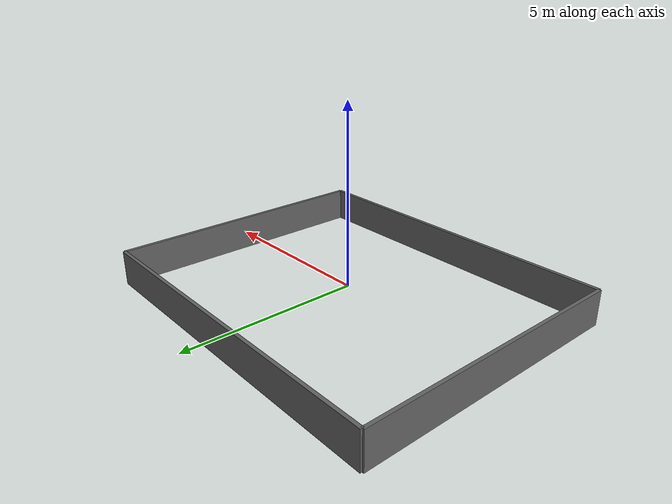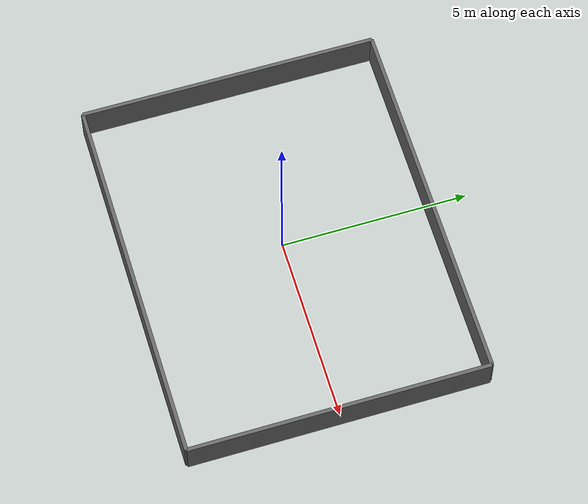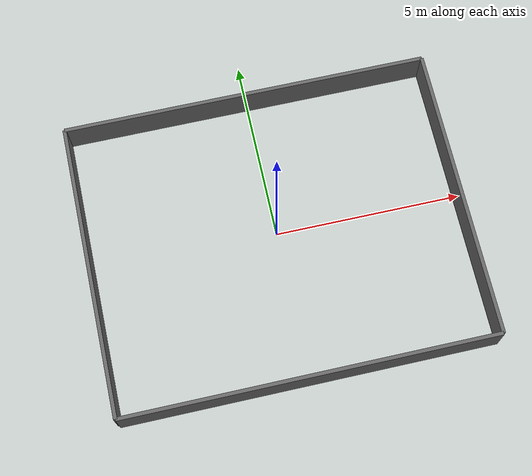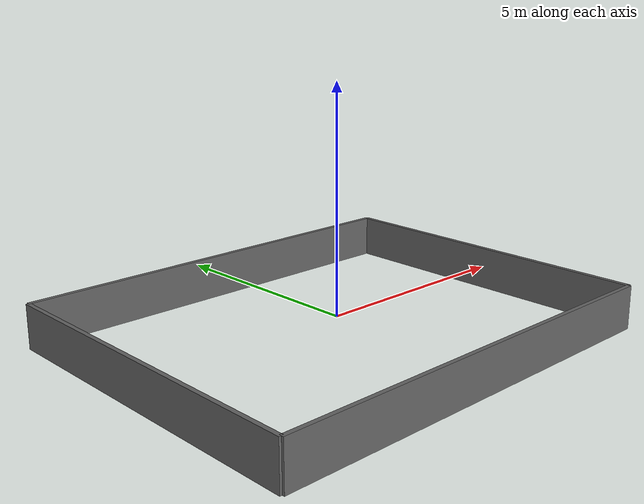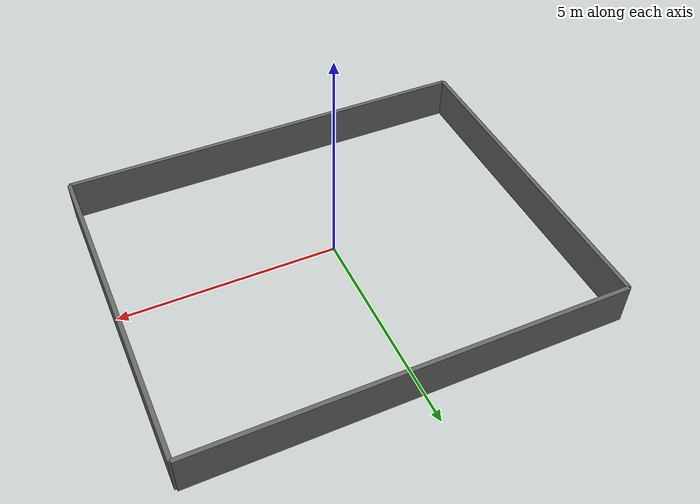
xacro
<?xml version="1.0"?>

<!--
 Preview:
     _______1________
    |                |
    |                |
    |       0        |
   3|       .        |4
    |                |
    |________________|
            2
-->

<robot xmlns:xacro="http://www.ros.org/wiki/xacro" name="hall">

    <xacro:include filename="$(find ropod_sim)/world_description/wall.xacro" />

    <link name="wall_0"/>

    <xacro:wall name="wall_1" parent="wall_0" length="10.0">
        <origin xyz="0.0 4.0 0.0" rpy="0.0 0.0 0.0"/>
    </xacro:wall>

    <xacro:wall name="wall_2" parent="wall_0" length="10.0">
        <origin xyz="0.0 -4.0 0.0" rpy="0.0 0.0 0.0"/>
    </xacro:wall>

    <xacro:wall name="wall_3" parent="wall_0" length="8.0">
        <origin xyz="-5.0 0.0 0.0" rpy="0.0 0.0 ${pi/2}"/>
    </xacro:wall>

    <xacro:wall name="wall_4" parent="wall_0" length="8.0">
        <origin xyz="5.0 0.0 0.0" rpy="0.0 0.0 ${pi/2}"/>
    </xacro:wall>

</robot>

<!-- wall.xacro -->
<root xmlns:xacro="http://www.ros.org/wiki/xacro">

    <!-- density of concrete (kg/m^3) -->
    <xacro:property name="density" value="2100" />
    <xacro:property name="default_width" value="0.1" />
    <xacro:property name="default_height" value="1.0" />

    <material name="grey">
        <color rgba="0.4 0.4 0.4 1.0"/>
    </material>

    <xacro:macro name="cuboid_inertia" params="length width height density:=^">
        <inertial>
            <mass value="${density*length*width*height}" />
            <inertia ixx="${(density*length*width*height/12)*(width*width + height*height)}"
                     iyy="${(density*length*width*height/12)*(height*height + length*length)}"
                     iyz="0.0" ixy="0.0" ixz="0.0"
                     izz="${(density*length*width*height/12)*(width*width + length*length)}" />
        </inertial>
    </xacro:macro>

    <xacro:macro name="wall" params="name parent *origin length width:=${default_width} height:=${default_height}">
        <joint name="joint_${name}" type="fixed">
            <xacro:insert_block name="origin" />
            <parent link="${parent}"/>
            <child link="${name}"/>
        </joint>
        <link name="${name}">
            <visual>
                <origin xyz="0 0 0"/>
                <geometry>
                    <box size="${length} ${width} ${height}" />
                </geometry>
                <material name="grey"/>
            </visual>
            <collision>
                <origin xyz="0 0 0"/>
                <geometry>
                    <box size="${length} ${width} ${height}" />
                </geometry>
            </collision>
            <xacro:cuboid_inertia length="${length}" width="${width}" height="${height}" />
        </link>
        <gazebo reference="${name}">
            <material>Gazebo/White</material>
            <selfCollide>false</selfCollide>
        </gazebo>
    </xacro:macro>

</root>
